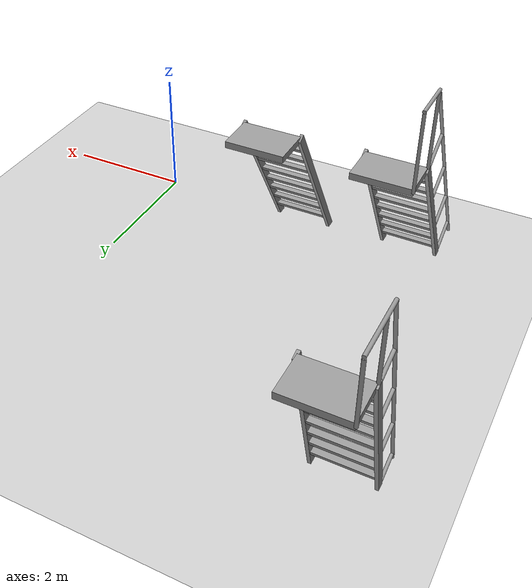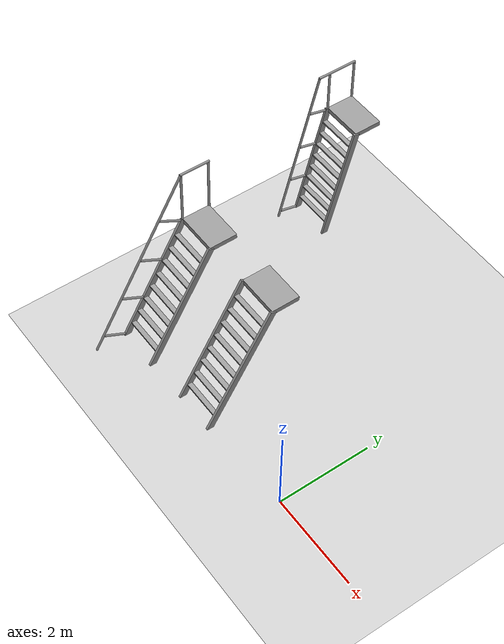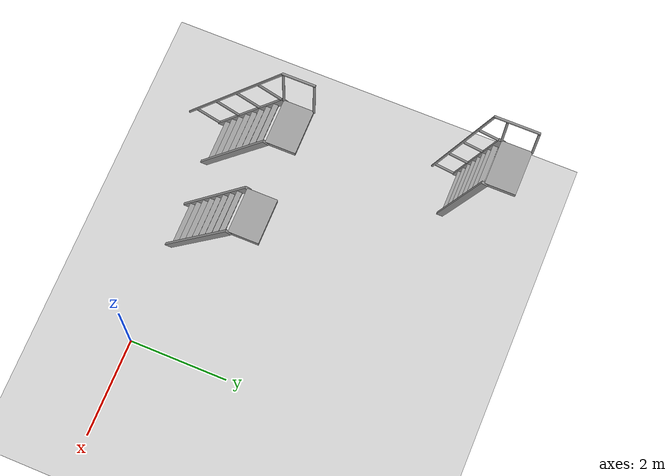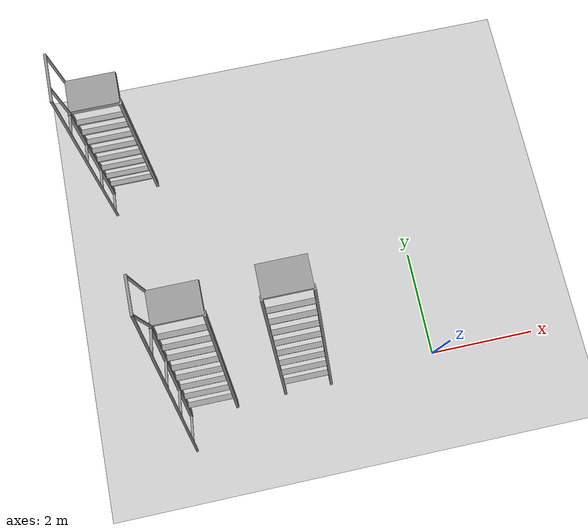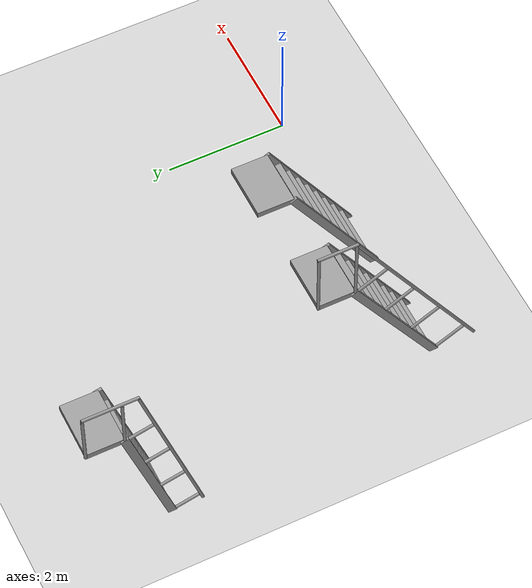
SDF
<sdf version="1.6">
 <world name="default">
  <model name="ground_plane">
   <static>1</static>
   <link name="link">
    <collision name="collision">
     <geometry><plane><normal>0 0 1</normal><size>100 100</size></plane></geometry>
     <surface>
      <contact><collide_bitmask>65535</collide_bitmask></contact>
      <friction><ode><mu>100</mu><mu2>50</mu2></ode></friction>
     </surface>
    </collision>
    <visual name="visual">
     <cast_shadows>0</cast_shadows>
     <geometry><plane><normal>0 0 1</normal><size>100 100</size></plane></geometry>
     <material>
      <script><uri>file://media/materials/scripts/gazebo.material</uri><name>Gazebo/Grey</name></script>
     </material>
    </visual>
   </link>
  </model>
  <model name="ladder60with75">
   <model name="ladder_60deg_0rails">
    <static>1</static>
    <link name="step0">
     <pose>0 0.15396 0.266667 0 -0 0</pose>
     <inertial>
      <mass>9.75482</mass>
      <inertia>
       <ixx>0.00957124</ixx>
       <iyy>0.65963</iyy>
       <izz>0.666842</izz>
       <ixy>0</ixy>
       <ixz>0</ixz>
       <iyz>0</iyz>
      </inertia>
     </inertial>
     <collision name="collision"><geometry><box><size>0.9 0.1016 0.0381</size></box></geometry></collision>
     <visual name="visual">
      <geometry><box><size>0.9 0.1016 0.0381</size></box></geometry>
      <material>
       <script><uri>file://media/materials/scripts/gazebo.material</uri><name>Gazebo/Grey</name></script>
      </material>
     </visual>
    </link>
    <link name="step1">
     <pose>0 0.30792 0.533333 0 -0 0</pose>
     <inertial>
      <mass>9.75482</mass>
      <inertia>
       <ixx>0.00957124</ixx>
       <iyy>0.65963</iyy>
       <izz>0.666842</izz>
       <ixy>0</ixy>
       <ixz>0</ixz>
       <iyz>0</iyz>
      </inertia>
     </inertial>
     <collision name="collision"><geometry><box><size>0.9 0.1016 0.0381</size></box></geometry></collision>
     <visual name="visual">
      <geometry><box><size>0.9 0.1016 0.0381</size></box></geometry>
      <material>
       <script><uri>file://media/materials/scripts/gazebo.material</uri><name>Gazebo/Grey</name></script>
      </material>
     </visual>
    </link>
    <link name="step2">
     <pose>0 0.46188 0.8 0 -0 0</pose>
     <inertial>
      <mass>9.75482</mass>
      <inertia>
       <ixx>0.00957124</ixx>
       <iyy>0.65963</iyy>
       <izz>0.666842</izz>
       <ixy>0</ixy>
       <ixz>0</ixz>
       <iyz>0</iyz>
      </inertia>
     </inertial>
     <collision name="collision"><geometry><box><size>0.9 0.1016 0.0381</size></box></geometry></collision>
     <visual name="visual">
      <geometry><box><size>0.9 0.1016 0.0381</size></box></geometry>
      <material>
       <script><uri>file://media/materials/scripts/gazebo.material</uri><name>Gazebo/Grey</name></script>
      </material>
     </visual>
    </link>
    <link name="step3">
     <pose>0 0.61584 1.06667 0 -0 0</pose>
     <inertial>
      <mass>9.75482</mass>
      <inertia>
       <ixx>0.00957124</ixx>
       <iyy>0.65963</iyy>
       <izz>0.666842</izz>
       <ixy>0</ixy>
       <ixz>0</ixz>
       <iyz>0</iyz>
      </inertia>
     </inertial>
     <collision name="collision"><geometry><box><size>0.9 0.1016 0.0381</size></box></geometry></collision>
     <visual name="visual">
      <geometry><box><size>0.9 0.1016 0.0381</size></box></geometry>
      <material>
       <script><uri>file://media/materials/scripts/gazebo.material</uri><name>Gazebo/Grey</name></script>
      </material>
     </visual>
    </link>
    <link name="step4">
     <pose>0 0.7698 1.33333 0 -0 0</pose>
     <inertial>
      <mass>9.75482</mass>
      <inertia>
       <ixx>0.00957124</ixx>
       <iyy>0.65963</iyy>
       <izz>0.666842</izz>
       <ixy>0</ixy>
       <ixz>0</ixz>
       <iyz>0</iyz>
      </inertia>
     </inertial>
     <collision name="collision"><geometry><box><size>0.9 0.1016 0.0381</size></box></geometry></collision>
     <visual name="visual">
      <geometry><box><size>0.9 0.1016 0.0381</size></box></geometry>
      <material>
       <script><uri>file://media/materials/scripts/gazebo.material</uri><name>Gazebo/Grey</name></script>
      </material>
     </visual>
    </link>
    <link name="step5">
     <pose>0 0.92376 1.6 0 -0 0</pose>
     <inertial>
      <mass>9.75482</mass>
      <inertia>
       <ixx>0.00957124</ixx>
       <iyy>0.65963</iyy>
       <izz>0.666842</izz>
       <ixy>0</ixy>
       <ixz>0</ixz>
       <iyz>0</iyz>
      </inertia>
     </inertial>
     <collision name="collision"><geometry><box><size>0.9 0.1016 0.0381</size></box></geometry></collision>
     <visual name="visual">
      <geometry><box><size>0.9 0.1016 0.0381</size></box></geometry>
      <material>
       <script><uri>file://media/materials/scripts/gazebo.material</uri><name>Gazebo/Grey</name></script>
      </material>
     </visual>
    </link>
    <link name="step6">
     <pose>0 1.07772 1.86667 0 -0 0</pose>
     <inertial>
      <mass>9.75482</mass>
      <inertia>
       <ixx>0.00957124</ixx>
       <iyy>0.65963</iyy>
       <izz>0.666842</izz>
       <ixy>0</ixy>
       <ixz>0</ixz>
       <iyz>0</iyz>
      </inertia>
     </inertial>
     <collision name="collision"><geometry><box><size>0.9 0.1016 0.0381</size></box></geometry></collision>
     <visual name="visual">
      <geometry><box><size>0.9 0.1016 0.0381</size></box></geometry>
      <material>
       <script><uri>file://media/materials/scripts/gazebo.material</uri><name>Gazebo/Grey</name></script>
      </material>
     </visual>
    </link>
    <link name="step7">
     <pose>0 1.23168 2.13333 0 -0 0</pose>
     <inertial>
      <mass>9.75482</mass>
      <inertia>
       <ixx>0.00957124</ixx>
       <iyy>0.65963</iyy>
       <izz>0.666842</izz>
       <ixy>0</ixy>
       <ixz>0</ixz>
       <iyz>0</iyz>
      </inertia>
     </inertial>
     <collision name="collision"><geometry><box><size>0.9 0.1016 0.0381</size></box></geometry></collision>
     <visual name="visual">
      <geometry><box><size>0.9 0.1016 0.0381</size></box></geometry>
      <material>
       <script><uri>file://media/materials/scripts/gazebo.material</uri><name>Gazebo/Grey</name></script>
      </material>
     </visual>
    </link>
    <link name="landing">
     <pose>0 1.68564 2.4 0 -0 0</pose>
     <inertial>
      <mass>57.6072</mass>
      <inertia><ixx>1.73518</ixx><iyy>3.89545</iyy><izz>5.6167</izz><ixy>0</ixy><ixz>0</ixz><iyz>0</iyz></inertia>
     </inertial>
     <collision name="collision"><geometry><box><size>0.9 0.6 0.1016</size></box></geometry></collision>
     <visual name="visual">
      <geometry><box><size>0.9 0.6 0.1016</size></box></geometry>
      <material>
       <script><uri>file://media/materials/scripts/gazebo.material</uri><name>Gazebo/Grey</name></script>
      </material>
     </visual>
    </link>
    <link name="left_side_wall">
     <pose>-0.45 0.69282 1.2 1.0472 -0 0</pose>
     <collision name="collision"><geometry><box><size>0.0508 2.85128 0.13</size></box></geometry></collision>
     <visual name="visual">
      <geometry><box><size>0.0508 2.85128 0.13</size></box></geometry>
      <material>
       <script><uri>file://media/materials/scripts/gazebo.material</uri><name>Gazebo/Grey</name></script>
      </material>
     </visual>
    </link>
    <link name="right_side_wall">
     <pose>0.45 0.69282 1.2 1.0472 -0 0</pose>
     <collision name="collision"><geometry><box><size>0.0508 2.85128 0.13</size></box></geometry></collision>
     <visual name="visual">
      <geometry><box><size>0.0508 2.85128 0.13</size></box></geometry>
      <material>
       <script><uri>file://media/materials/scripts/gazebo.material</uri><name>Gazebo/Grey</name></script>
      </material>
     </visual>
    </link>
    <pose>1.4975 -1.54576 0 0 -0 0</pose>
   </model>
   <model name="ladder_60deg_1rails">
    <static>1</static>
    <link name="step0">
     <pose>0 0.15396 0.266667 0 -0 0</pose>
     <inertial>
      <mass>9.75482</mass>
      <inertia>
       <ixx>0.00957124</ixx>
       <iyy>0.65963</iyy>
       <izz>0.666842</izz>
       <ixy>0</ixy>
       <ixz>0</ixz>
       <iyz>0</iyz>
      </inertia>
     </inertial>
     <collision name="collision"><geometry><box><size>0.9 0.1016 0.0381</size></box></geometry></collision>
     <visual name="visual">
      <geometry><box><size>0.9 0.1016 0.0381</size></box></geometry>
      <material>
       <script><uri>file://media/materials/scripts/gazebo.material</uri><name>Gazebo/Grey</name></script>
      </material>
     </visual>
    </link>
    <link name="step1">
     <pose>0 0.30792 0.533333 0 -0 0</pose>
     <inertial>
      <mass>9.75482</mass>
      <inertia>
       <ixx>0.00957124</ixx>
       <iyy>0.65963</iyy>
       <izz>0.666842</izz>
       <ixy>0</ixy>
       <ixz>0</ixz>
       <iyz>0</iyz>
      </inertia>
     </inertial>
     <collision name="collision"><geometry><box><size>0.9 0.1016 0.0381</size></box></geometry></collision>
     <visual name="visual">
      <geometry><box><size>0.9 0.1016 0.0381</size></box></geometry>
      <material>
       <script><uri>file://media/materials/scripts/gazebo.material</uri><name>Gazebo/Grey</name></script>
      </material>
     </visual>
    </link>
    <link name="step2">
     <pose>0 0.46188 0.8 0 -0 0</pose>
     <inertial>
      <mass>9.75482</mass>
      <inertia>
       <ixx>0.00957124</ixx>
       <iyy>0.65963</iyy>
       <izz>0.666842</izz>
       <ixy>0</ixy>
       <ixz>0</ixz>
       <iyz>0</iyz>
      </inertia>
     </inertial>
     <collision name="collision"><geometry><box><size>0.9 0.1016 0.0381</size></box></geometry></collision>
     <visual name="visual">
      <geometry><box><size>0.9 0.1016 0.0381</size></box></geometry>
      <material>
       <script><uri>file://media/materials/scripts/gazebo.material</uri><name>Gazebo/Grey</name></script>
      </material>
     </visual>
    </link>
    <link name="step3">
     <pose>0 0.61584 1.06667 0 -0 0</pose>
     <inertial>
      <mass>9.75482</mass>
      <inertia>
       <ixx>0.00957124</ixx>
       <iyy>0.65963</iyy>
       <izz>0.666842</izz>
       <ixy>0</ixy>
       <ixz>0</ixz>
       <iyz>0</iyz>
      </inertia>
     </inertial>
     <collision name="collision"><geometry><box><size>0.9 0.1016 0.0381</size></box></geometry></collision>
     <visual name="visual">
      <geometry><box><size>0.9 0.1016 0.0381</size></box></geometry>
      <material>
       <script><uri>file://media/materials/scripts/gazebo.material</uri><name>Gazebo/Grey</name></script>
      </material>
     </visual>
    </link>
    <link name="step4">
     <pose>0 0.7698 1.33333 0 -0 0</pose>
     <inertial>
      <mass>9.75482</mass>
      <inertia>
       <ixx>0.00957124</ixx>
       <iyy>0.65963</iyy>
       <izz>0.666842</izz>
       <ixy>0</ixy>
       <ixz>0</ixz>
       <iyz>0</iyz>
      </inertia>
     </inertial>
     <collision name="collision"><geometry><box><size>0.9 0.1016 0.0381</size></box></geometry></collision>
     <visual name="visual">
      <geometry><box><size>0.9 0.1016 0.0381</size></box></geometry>
      <material>
       <script><uri>file://media/materials/scripts/gazebo.material</uri><name>Gazebo/Grey</name></script>
      </material>
     </visual>
    </link>
    <link name="step5">
     <pose>0 0.92376 1.6 0 -0 0</pose>
     <inertial>
      <mass>9.75482</mass>
      <inertia>
       <ixx>0.00957124</ixx>
       <iyy>0.65963</iyy>
       <izz>0.666842</izz>
       <ixy>0</ixy>
       <ixz>0</ixz>
       <iyz>0</iyz>
      </inertia>
     </inertial>
     <collision name="collision"><geometry><box><size>0.9 0.1016 0.0381</size></box></geometry></collision>
     <visual name="visual">
      <geometry><box><size>0.9 0.1016 0.0381</size></box></geometry>
      <material>
       <script><uri>file://media/materials/scripts/gazebo.material</uri><name>Gazebo/Grey</name></script>
      </material>
     </visual>
    </link>
    <link name="step6">
     <pose>0 1.07772 1.86667 0 -0 0</pose>
     <inertial>
      <mass>9.75482</mass>
      <inertia>
       <ixx>0.00957124</ixx>
       <iyy>0.65963</iyy>
       <izz>0.666842</izz>
       <ixy>0</ixy>
       <ixz>0</ixz>
       <iyz>0</iyz>
      </inertia>
     </inertial>
     <collision name="collision"><geometry><box><size>0.9 0.1016 0.0381</size></box></geometry></collision>
     <visual name="visual">
      <geometry><box><size>0.9 0.1016 0.0381</size></box></geometry>
      <material>
       <script><uri>file://media/materials/scripts/gazebo.material</uri><name>Gazebo/Grey</name></script>
      </material>
     </visual>
    </link>
    <link name="step7">
     <pose>0 1.23168 2.13333 0 -0 0</pose>
     <inertial>
      <mass>9.75482</mass>
      <inertia>
       <ixx>0.00957124</ixx>
       <iyy>0.65963</iyy>
       <izz>0.666842</izz>
       <ixy>0</ixy>
       <ixz>0</ixz>
       <iyz>0</iyz>
      </inertia>
     </inertial>
     <collision name="collision"><geometry><box><size>0.9 0.1016 0.0381</size></box></geometry></collision>
     <visual name="visual">
      <geometry><box><size>0.9 0.1016 0.0381</size></box></geometry>
      <material>
       <script><uri>file://media/materials/scripts/gazebo.material</uri><name>Gazebo/Grey</name></script>
      </material>
     </visual>
    </link>
    <link name="landing">
     <pose>0 1.68564 2.4 0 -0 0</pose>
     <inertial>
      <mass>57.6072</mass>
      <inertia><ixx>1.73518</ixx><iyy>3.89545</iyy><izz>5.6167</izz><ixy>0</ixy><ixz>0</ixz><iyz>0</iyz></inertia>
     </inertial>
     <collision name="collision"><geometry><box><size>0.9 0.6 0.1016</size></box></geometry></collision>
     <visual name="visual">
      <geometry><box><size>0.9 0.6 0.1016</size></box></geometry>
      <material>
       <script><uri>file://media/materials/scripts/gazebo.material</uri><name>Gazebo/Grey</name></script>
      </material>
     </visual>
    </link>
    <link name="left_side_wall">
     <pose>-0.45 0.69282 1.2 1.0472 -0 0</pose>
     <collision name="collision"><geometry><box><size>0.0508 2.85128 0.13</size></box></geometry></collision>
     <visual name="visual">
      <geometry><box><size>0.0508 2.85128 0.13</size></box></geometry>
      <material>
       <script><uri>file://media/materials/scripts/gazebo.material</uri><name>Gazebo/Grey</name></script>
      </material>
     </visual>
    </link>
    <link name="right_side_wall">
     <pose>0.45 0.69282 1.2 1.0472 -0 0</pose>
     <collision name="collision"><geometry><box><size>0.0508 2.85128 0.13</size></box></geometry></collision>
     <visual name="visual">
      <geometry><box><size>0.0508 2.85128 0.13</size></box></geometry>
      <material>
       <script><uri>file://media/materials/scripts/gazebo.material</uri><name>Gazebo/Grey</name></script>
      </material>
     </visual>
    </link>
    <link name="left_railing_long">
     <pose>-0.45 0.34282 1.80622 -0.523599 0 0</pose>
     <collision name="collision">
      <geometry><cylinder><radius>0.02413</radius><length>4.17128</length></cylinder></geometry>
     </collision>
     <visual name="visual">
      <geometry><cylinder><radius>0.02413</radius><length>4.17128</length></cylinder></geometry>
      <material>
       <script><uri>file://media/materials/scripts/gazebo.material</uri><name>Gazebo/Grey</name></script>
      </material>
     </visual>
    </link>
    <link name="left_railing_upright0">
     <pose>-0.45 -0.274963 0.15875 1.0472 -0 0</pose>
     <collision name="collision">
      <geometry><cylinder><radius>0.02413</radius><length>0.541218</length></cylinder></geometry>
     </collision>
     <visual name="visual">
      <geometry><cylinder><radius>0.02413</radius><length>0.541218</length></cylinder></geometry>
      <material>
       <script><uri>file://media/materials/scripts/gazebo.material</uri><name>Gazebo/Grey</name></script>
      </material>
     </visual>
    </link>
    <link name="left_railing_upright1">
     <pose>-0.45 0.186917 0.95875 1.0472 -0 0</pose>
     <collision name="collision">
      <geometry><cylinder><radius>0.02413</radius><length>0.541218</length></cylinder></geometry>
     </collision>
     <visual name="visual">
      <geometry><cylinder><radius>0.02413</radius><length>0.541218</length></cylinder></geometry>
      <material>
       <script><uri>file://media/materials/scripts/gazebo.material</uri><name>Gazebo/Grey</name></script>
      </material>
     </visual>
    </link>
    <link name="left_railing_upright2">
     <pose>-0.45 0.648797 1.75875 1.0472 -0 0</pose>
     <collision name="collision">
      <geometry><cylinder><radius>0.02413</radius><length>0.541218</length></cylinder></geometry>
     </collision>
     <visual name="visual">
      <geometry><cylinder><radius>0.02413</radius><length>0.541218</length></cylinder></geometry>
      <material>
       <script><uri>file://media/materials/scripts/gazebo.material</uri><name>Gazebo/Grey</name></script>
      </material>
     </visual>
    </link>
    <link name="left_railing_upright3">
     <pose>-0.45 1.11068 2.55875 1.0472 -0 0</pose>
     <collision name="collision">
      <geometry><cylinder><radius>0.02413</radius><length>0.541218</length></cylinder></geometry>
     </collision>
     <visual name="visual">
      <geometry><cylinder><radius>0.02413</radius><length>0.541218</length></cylinder></geometry>
      <material>
       <script><uri>file://media/materials/scripts/gazebo.material</uri><name>Gazebo/Grey</name></script>
      </material>
     </visual>
    </link>
    <link name="left_railing_landing_top">
     <pose>-0.45 1.68564 3.61244 1.5708 -0 0</pose>
     <collision name="collision">
      <geometry><cylinder><radius>0.02413</radius><length>0.64826</length></cylinder></geometry>
     </collision>
     <visual name="visual">
      <geometry><cylinder><radius>0.02413</radius><length>0.64826</length></cylinder></geometry>
      <material>
       <script><uri>file://media/materials/scripts/gazebo.material</uri><name>Gazebo/Grey</name></script>
      </material>
     </visual>
    </link>
    <link name="left_railing_landing_upright_0">
     <pose>-0.45 1.38564 3.00622 0 -0 0</pose>
     <collision name="collision">
      <geometry><cylinder><radius>0.02413</radius><length>1.21244</length></cylinder></geometry>
     </collision>
     <visual name="visual">
      <geometry><cylinder><radius>0.02413</radius><length>1.21244</length></cylinder></geometry>
      <material>
       <script><uri>file://media/materials/scripts/gazebo.material</uri><name>Gazebo/Grey</name></script>
      </material>
     </visual>
    </link>
    <link name="left_railing_landing_upright_1">
     <pose>-0.45 1.98564 3.00622 0 -0 0</pose>
     <collision name="collision">
      <geometry><cylinder><radius>0.02413</radius><length>1.21244</length></cylinder></geometry>
     </collision>
     <visual name="visual">
      <geometry><cylinder><radius>0.02413</radius><length>1.21244</length></cylinder></geometry>
      <material>
       <script><uri>file://media/materials/scripts/gazebo.material</uri><name>Gazebo/Grey</name></script>
      </material>
     </visual>
    </link>
    <pose>-0.355505 -1.59937 0 0 -0 0</pose>
   </model>
   <model name="ladder_75deg_1rails">
    <static>1</static>
    <link name="step0">
     <pose>0 0.071453 0.266667 0 -0 0</pose>
     <inertial>
      <mass>9.75482</mass>
      <inertia>
       <ixx>0.00957124</ixx>
       <iyy>0.65963</iyy>
       <izz>0.666842</izz>
       <ixy>0</ixy>
       <ixz>0</ixz>
       <iyz>0</iyz>
      </inertia>
     </inertial>
     <collision name="collision"><geometry><box><size>0.9 0.1016 0.0381</size></box></geometry></collision>
     <visual name="visual">
      <geometry><box><size>0.9 0.1016 0.0381</size></box></geometry>
      <material>
       <script><uri>file://media/materials/scripts/gazebo.material</uri><name>Gazebo/Grey</name></script>
      </material>
     </visual>
    </link>
    <link name="step1">
     <pose>0 0.142906 0.533333 0 -0 0</pose>
     <inertial>
      <mass>9.75482</mass>
      <inertia>
       <ixx>0.00957124</ixx>
       <iyy>0.65963</iyy>
       <izz>0.666842</izz>
       <ixy>0</ixy>
       <ixz>0</ixz>
       <iyz>0</iyz>
      </inertia>
     </inertial>
     <collision name="collision"><geometry><box><size>0.9 0.1016 0.0381</size></box></geometry></collision>
     <visual name="visual">
      <geometry><box><size>0.9 0.1016 0.0381</size></box></geometry>
      <material>
       <script><uri>file://media/materials/scripts/gazebo.material</uri><name>Gazebo/Grey</name></script>
      </material>
     </visual>
    </link>
    <link name="step2">
     <pose>0 0.214359 0.8 0 -0 0</pose>
     <inertial>
      <mass>9.75482</mass>
      <inertia>
       <ixx>0.00957124</ixx>
       <iyy>0.65963</iyy>
       <izz>0.666842</izz>
       <ixy>0</ixy>
       <ixz>0</ixz>
       <iyz>0</iyz>
      </inertia>
     </inertial>
     <collision name="collision"><geometry><box><size>0.9 0.1016 0.0381</size></box></geometry></collision>
     <visual name="visual">
      <geometry><box><size>0.9 0.1016 0.0381</size></box></geometry>
      <material>
       <script><uri>file://media/materials/scripts/gazebo.material</uri><name>Gazebo/Grey</name></script>
      </material>
     </visual>
    </link>
    <link name="step3">
     <pose>0 0.285812 1.06667 0 -0 0</pose>
     <inertial>
      <mass>9.75482</mass>
      <inertia>
       <ixx>0.00957124</ixx>
       <iyy>0.65963</iyy>
       <izz>0.666842</izz>
       <ixy>0</ixy>
       <ixz>0</ixz>
       <iyz>0</iyz>
      </inertia>
     </inertial>
     <collision name="collision"><geometry><box><size>0.9 0.1016 0.0381</size></box></geometry></collision>
     <visual name="visual">
      <geometry><box><size>0.9 0.1016 0.0381</size></box></geometry>
      <material>
       <script><uri>file://media/materials/scripts/gazebo.material</uri><name>Gazebo/Grey</name></script>
      </material>
     </visual>
    </link>
    <link name="step4">
     <pose>0 0.357266 1.33333 0 -0 0</pose>
     <inertial>
      <mass>9.75482</mass>
      <inertia>
       <ixx>0.00957124</ixx>
       <iyy>0.65963</iyy>
       <izz>0.666842</izz>
       <ixy>0</ixy>
       <ixz>0</ixz>
       <iyz>0</iyz>
      </inertia>
     </inertial>
     <collision name="collision"><geometry><box><size>0.9 0.1016 0.0381</size></box></geometry></collision>
     <visual name="visual">
      <geometry><box><size>0.9 0.1016 0.0381</size></box></geometry>
      <material>
       <script><uri>file://media/materials/scripts/gazebo.material</uri><name>Gazebo/Grey</name></script>
      </material>
     </visual>
    </link>
    <link name="step5">
     <pose>0 0.428719 1.6 0 -0 0</pose>
     <inertial>
      <mass>9.75482</mass>
      <inertia>
       <ixx>0.00957124</ixx>
       <iyy>0.65963</iyy>
       <izz>0.666842</izz>
       <ixy>0</ixy>
       <ixz>0</ixz>
       <iyz>0</iyz>
      </inertia>
     </inertial>
     <collision name="collision"><geometry><box><size>0.9 0.1016 0.0381</size></box></geometry></collision>
     <visual name="visual">
      <geometry><box><size>0.9 0.1016 0.0381</size></box></geometry>
      <material>
       <script><uri>file://media/materials/scripts/gazebo.material</uri><name>Gazebo/Grey</name></script>
      </material>
     </visual>
    </link>
    <link name="step6">
     <pose>0 0.500172 1.86667 0 -0 0</pose>
     <inertial>
      <mass>9.75482</mass>
      <inertia>
       <ixx>0.00957124</ixx>
       <iyy>0.65963</iyy>
       <izz>0.666842</izz>
       <ixy>0</ixy>
       <ixz>0</ixz>
       <iyz>0</iyz>
      </inertia>
     </inertial>
     <collision name="collision"><geometry><box><size>0.9 0.1016 0.0381</size></box></geometry></collision>
     <visual name="visual">
      <geometry><box><size>0.9 0.1016 0.0381</size></box></geometry>
      <material>
       <script><uri>file://media/materials/scripts/gazebo.material</uri><name>Gazebo/Grey</name></script>
      </material>
     </visual>
    </link>
    <link name="step7">
     <pose>0 0.571625 2.13333 0 -0 0</pose>
     <inertial>
      <mass>9.75482</mass>
      <inertia>
       <ixx>0.00957124</ixx>
       <iyy>0.65963</iyy>
       <izz>0.666842</izz>
       <ixy>0</ixy>
       <ixz>0</ixz>
       <iyz>0</iyz>
      </inertia>
     </inertial>
     <collision name="collision"><geometry><box><size>0.9 0.1016 0.0381</size></box></geometry></collision>
     <visual name="visual">
      <geometry><box><size>0.9 0.1016 0.0381</size></box></geometry>
      <material>
       <script><uri>file://media/materials/scripts/gazebo.material</uri><name>Gazebo/Grey</name></script>
      </material>
     </visual>
    </link>
    <link name="landing">
     <pose>0 0.943078 2.4 0 -0 0</pose>
     <inertial>
      <mass>57.6072</mass>
      <inertia><ixx>1.73518</ixx><iyy>3.89545</iyy><izz>5.6167</izz><ixy>0</ixy><ixz>0</ixz><iyz>0</iyz></inertia>
     </inertial>
     <collision name="collision"><geometry><box><size>0.9 0.6 0.1016</size></box></geometry></collision>
     <visual name="visual">
      <geometry><box><size>0.9 0.6 0.1016</size></box></geometry>
      <material>
       <script><uri>file://media/materials/scripts/gazebo.material</uri><name>Gazebo/Grey</name></script>
      </material>
     </visual>
    </link>
    <link name="left_side_wall">
     <pose>-0.45 0.321539 1.2 1.309 -0 0</pose>
     <collision name="collision"><geometry><box><size>0.0508 2.56466 0.13</size></box></geometry></collision>
     <visual name="visual">
      <geometry><box><size>0.0508 2.56466 0.13</size></box></geometry>
      <material>
       <script><uri>file://media/materials/scripts/gazebo.material</uri><name>Gazebo/Grey</name></script>
      </material>
     </visual>
    </link>
    <link name="right_side_wall">
     <pose>0.45 0.321539 1.2 1.309 -0 0</pose>
     <collision name="collision"><geometry><box><size>0.0508 2.56466 0.13</size></box></geometry></collision>
     <visual name="visual">
      <geometry><box><size>0.0508 2.56466 0.13</size></box></geometry>
      <material>
       <script><uri>file://media/materials/scripts/gazebo.material</uri><name>Gazebo/Grey</name></script>
      </material>
     </visual>
    </link>
    <link name="left_railing_long">
     <pose>-0.45 -0.053461 1.66651 -0.261799 0 0</pose>
     <collision name="collision">
      <geometry><cylinder><radius>0.02413</radius><length>3.51529</length></cylinder></geometry>
     </collision>
     <visual name="visual">
      <geometry><cylinder><radius>0.02413</radius><length>3.51529</length></cylinder></geometry>
      <material>
       <script><uri>file://media/materials/scripts/gazebo.material</uri><name>Gazebo/Grey</name></script>
      </material>
     </visual>
    </link>
    <link name="left_railing_upright0">
     <pose>-0.45 -0.210089 0.056293 1.309 -0 0</pose>
     <collision name="collision">
      <geometry><cylinder><radius>0.02413</radius><length>0.482963</length></cylinder></geometry>
     </collision>
     <visual name="visual">
      <geometry><cylinder><radius>0.02413</radius><length>0.482963</length></cylinder></geometry>
      <material>
       <script><uri>file://media/materials/scripts/gazebo.material</uri><name>Gazebo/Grey</name></script>
      </material>
     </visual>
    </link>
    <link name="left_railing_upright1">
     <pose>-0.45 0.00427 0.856293 1.309 -0 0</pose>
     <collision name="collision">
      <geometry><cylinder><radius>0.02413</radius><length>0.482963</length></cylinder></geometry>
     </collision>
     <visual name="visual">
      <geometry><cylinder><radius>0.02413</radius><length>0.482963</length></cylinder></geometry>
      <material>
       <script><uri>file://media/materials/scripts/gazebo.material</uri><name>Gazebo/Grey</name></script>
      </material>
     </visual>
    </link>
    <link name="left_railing_upright2">
     <pose>-0.45 0.21863 1.65629 1.309 -0 0</pose>
     <collision name="collision">
      <geometry><cylinder><radius>0.02413</radius><length>0.482963</length></cylinder></geometry>
     </collision>
     <visual name="visual">
      <geometry><cylinder><radius>0.02413</radius><length>0.482963</length></cylinder></geometry>
      <material>
       <script><uri>file://media/materials/scripts/gazebo.material</uri><name>Gazebo/Grey</name></script>
      </material>
     </visual>
    </link>
    <link name="left_railing_upright3">
     <pose>-0.45 0.432989 2.45629 1.309 -0 0</pose>
     <collision name="collision">
      <geometry><cylinder><radius>0.02413</radius><length>0.482963</length></cylinder></geometry>
     </collision>
     <visual name="visual">
      <geometry><cylinder><radius>0.02413</radius><length>0.482963</length></cylinder></geometry>
      <material>
       <script><uri>file://media/materials/scripts/gazebo.material</uri><name>Gazebo/Grey</name></script>
      </material>
     </visual>
    </link>
    <link name="left_railing_landing_top">
     <pose>-0.45 0.818078 3.35714 1.5708 -0 0</pose>
     <collision name="collision">
      <geometry><cylinder><radius>0.02413</radius><length>0.87413</length></cylinder></geometry>
     </collision>
     <visual name="visual">
      <geometry><cylinder><radius>0.02413</radius><length>0.87413</length></cylinder></geometry>
      <material>
       <script><uri>file://media/materials/scripts/gazebo.material</uri><name>Gazebo/Grey</name></script>
      </material>
     </visual>
    </link>
    <link name="left_railing_landing_upright_0">
     <pose>-0.45 0.643078 2.86651 0 -0 0</pose>
     <collision name="collision">
      <geometry><cylinder><radius>0.02413</radius><length>0.933013</length></cylinder></geometry>
     </collision>
     <visual name="visual">
      <geometry><cylinder><radius>0.02413</radius><length>0.933013</length></cylinder></geometry>
      <material>
       <script><uri>file://media/materials/scripts/gazebo.material</uri><name>Gazebo/Grey</name></script>
      </material>
     </visual>
    </link>
    <link name="left_railing_landing_upright_1">
     <pose>-0.45 1.24308 2.86651 0 -0 0</pose>
     <collision name="collision">
      <geometry><cylinder><radius>0.02413</radius><length>0.933013</length></cylinder></geometry>
     </collision>
     <visual name="visual">
      <geometry><cylinder><radius>0.02413</radius><length>0.933013</length></cylinder></geometry>
      <material>
       <script><uri>file://media/materials/scripts/gazebo.material</uri><name>Gazebo/Grey</name></script>
      </material>
     </visual>
    </link>
    <pose>-1.14199 3.14513 0 0 -0 0</pose>
   </model>
   <static>0</static>
   <pose>-4.00317 1.4328 0 0 -0 0</pose>
  </model>
 </world>
</sdf>
